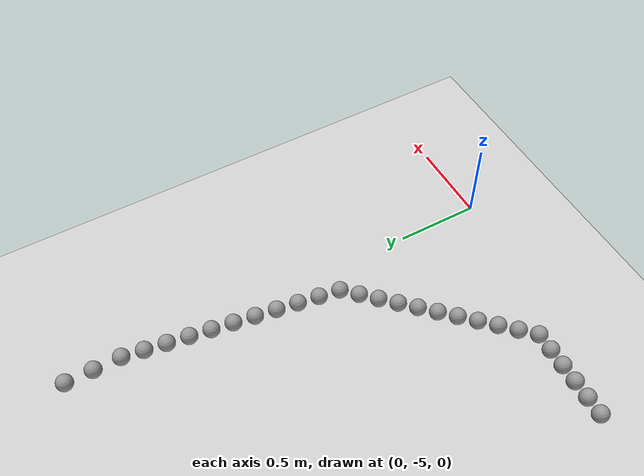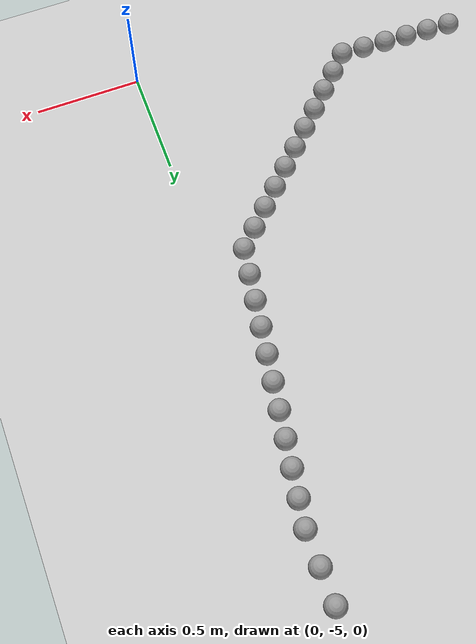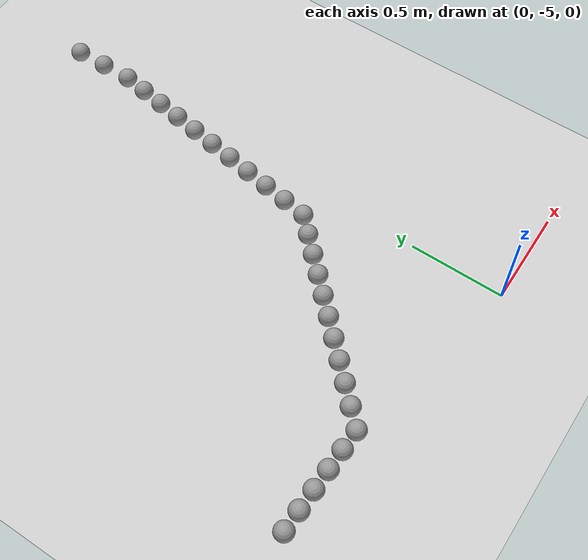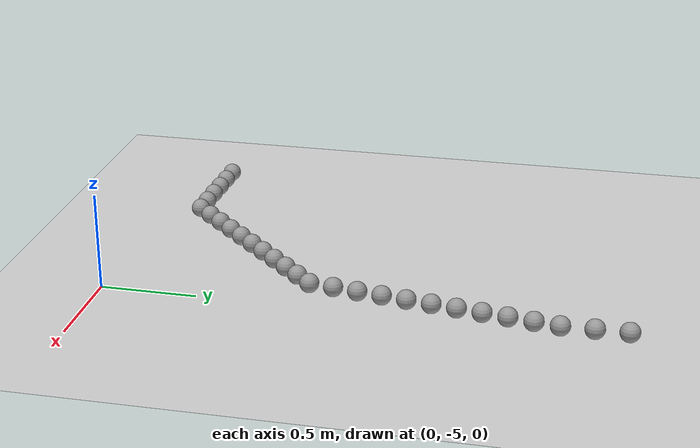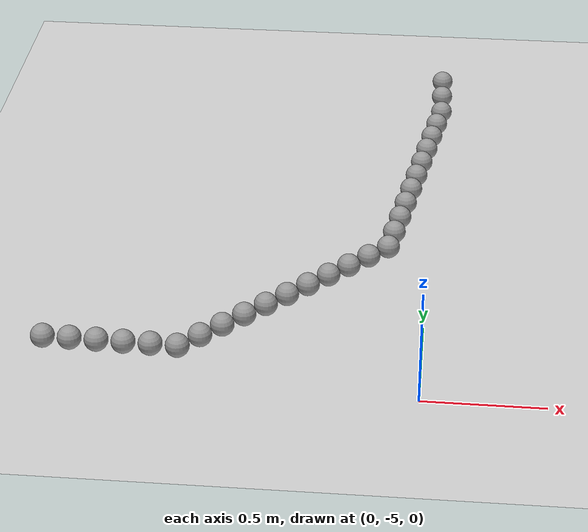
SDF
<sdf version="1.6">
 <world name="default">
  <model name="ground_plane">
   <static>1</static>
   <link name="link">
    <collision name="collision">
     <geometry><plane><normal>0 0 1</normal><size>100 100</size></plane></geometry>
     <surface><friction><ode><mu>100</mu><mu2>50</mu2></ode></friction></surface>
    </collision>
    <visual name="visual">
     <cast_shadows>0</cast_shadows>
     <geometry><plane><normal>0 0 1</normal><size>100 100</size></plane></geometry>
     <material>
      <script><uri>file://media/materials/scripts/gazebo.material</uri><name>Gazebo/Grey</name></script>
     </material>
    </visual>
   </link>
  </model>
  <model name="unit_sphere_0_105">
   <pose>-1.535000 -4.760000 0.050000 0 -0 0</pose>
   <link name="link">
    <inertial>
     <mass>1</mass>
     <inertia><ixx>0.1</ixx><ixy>0</ixy><ixz>0</ixz><iyy>0.1</iyy><iyz>0</iyz><izz>0.1</izz></inertia>
    </inertial>
    <collision name="collision"><geometry><sphere><radius>0.050000</radius></sphere></geometry></collision>
    <visual name="visual">
     <geometry><sphere><radius>0.050000</radius></sphere></geometry>
     <material>
      <script><name>Gazebo/Grey</name><uri>file://media/materials/scripts/gazebo.material</uri></script>
     </material>
    </visual>
   </link>
  </model>
  <model name="unit_sphere_0_106">
   <pose>-1.424000 -4.764000 0.050000 0 -0 0</pose>
   <link name="link">
    <inertial>
     <mass>1</mass>
     <inertia><ixx>0.1</ixx><ixy>0</ixy><ixz>0</ixz><iyy>0.1</iyy><iyz>0</iyz><izz>0.1</izz></inertia>
    </inertial>
    <collision name="collision"><geometry><sphere><radius>0.050000</radius></sphere></geometry></collision>
    <visual name="visual">
     <geometry><sphere><radius>0.050000</radius></sphere></geometry>
     <material>
      <script><name>Gazebo/Grey</name><uri>file://media/materials/scripts/gazebo.material</uri></script>
     </material>
    </visual>
   </link>
  </model>
  <model name="unit_sphere_0_107">
   <pose>-1.313000 -4.768000 0.050000 0 -0 0</pose>
   <link name="link">
    <inertial>
     <mass>1</mass>
     <inertia><ixx>0.1</ixx><ixy>0</ixy><ixz>0</ixz><iyy>0.1</iyy><iyz>0</iyz><izz>0.1</izz></inertia>
    </inertial>
    <collision name="collision"><geometry><sphere><radius>0.050000</radius></sphere></geometry></collision>
    <visual name="visual">
     <geometry><sphere><radius>0.050000</radius></sphere></geometry>
     <material>
      <script><name>Gazebo/Grey</name><uri>file://media/materials/scripts/gazebo.material</uri></script>
     </material>
    </visual>
   </link>
  </model>
  <model name="unit_sphere_0_108">
   <pose>-1.202000 -4.772000 0.050000 0 -0 0</pose>
   <link name="link">
    <inertial>
     <mass>1</mass>
     <inertia><ixx>0.1</ixx><ixy>0</ixy><ixz>0</ixz><iyy>0.1</iyy><iyz>0</iyz><izz>0.1</izz></inertia>
    </inertial>
    <collision name="collision"><geometry><sphere><radius>0.050000</radius></sphere></geometry></collision>
    <visual name="visual">
     <geometry><sphere><radius>0.050000</radius></sphere></geometry>
     <material>
      <script><name>Gazebo/Grey</name><uri>file://media/materials/scripts/gazebo.material</uri></script>
     </material>
    </visual>
   </link>
  </model>
  <model name="unit_sphere_0_109">
   <pose>-1.091000 -4.776000 0.050000 0 -0 0</pose>
   <link name="link">
    <inertial>
     <mass>1</mass>
     <inertia><ixx>0.1</ixx><ixy>0</ixy><ixz>0</ixz><iyy>0.1</iyy><iyz>0</iyz><izz>0.1</izz></inertia>
    </inertial>
    <collision name="collision"><geometry><sphere><radius>0.050000</radius></sphere></geometry></collision>
    <visual name="visual">
     <geometry><sphere><radius>0.050000</radius></sphere></geometry>
     <material>
      <script><name>Gazebo/Grey</name><uri>file://media/materials/scripts/gazebo.material</uri></script>
     </material>
    </visual>
   </link>
  </model>
  <model name="unit_sphere_0_110">
   <pose>-0.980000 -4.780000 0.050000 0 -0 0</pose>
   <link name="link">
    <inertial>
     <mass>1</mass>
     <inertia><ixx>0.1</ixx><ixy>0</ixy><ixz>0</ixz><iyy>0.1</iyy><iyz>0</iyz><izz>0.1</izz></inertia>
    </inertial>
    <collision name="collision"><geometry><sphere><radius>0.050000</radius></sphere></geometry></collision>
    <visual name="visual">
     <geometry><sphere><radius>0.050000</radius></sphere></geometry>
     <material>
      <script><name>Gazebo/Grey</name><uri>file://media/materials/scripts/gazebo.material</uri></script>
     </material>
    </visual>
   </link>
  </model>
  <model name="unit_sphere_0_111">
   <pose>-0.899000 -4.698000 0.050000 0 -0 0</pose>
   <link name="link">
    <inertial>
     <mass>1</mass>
     <inertia><ixx>0.1</ixx><ixy>0</ixy><ixz>0</ixz><iyy>0.1</iyy><iyz>0</iyz><izz>0.1</izz></inertia>
    </inertial>
    <collision name="collision"><geometry><sphere><radius>0.050000</radius></sphere></geometry></collision>
    <visual name="visual">
     <geometry><sphere><radius>0.050000</radius></sphere></geometry>
     <material>
      <script><name>Gazebo/Grey</name><uri>file://media/materials/scripts/gazebo.material</uri></script>
     </material>
    </visual>
   </link>
  </model>
  <model name="unit_sphere_0_112">
   <pose>-0.818000 -4.616000 0.050000 0 -0 0</pose>
   <link name="link">
    <inertial>
     <mass>1</mass>
     <inertia><ixx>0.1</ixx><ixy>0</ixy><ixz>0</ixz><iyy>0.1</iyy><iyz>0</iyz><izz>0.1</izz></inertia>
    </inertial>
    <collision name="collision"><geometry><sphere><radius>0.050000</radius></sphere></geometry></collision>
    <visual name="visual">
     <geometry><sphere><radius>0.050000</radius></sphere></geometry>
     <material>
      <script><name>Gazebo/Grey</name><uri>file://media/materials/scripts/gazebo.material</uri></script>
     </material>
    </visual>
   </link>
  </model>
  <model name="unit_sphere_0_113">
   <pose>-0.737000 -4.534000 0.050000 0 -0 0</pose>
   <link name="link">
    <inertial>
     <mass>1</mass>
     <inertia><ixx>0.1</ixx><ixy>0</ixy><ixz>0</ixz><iyy>0.1</iyy><iyz>0</iyz><izz>0.1</izz></inertia>
    </inertial>
    <collision name="collision"><geometry><sphere><radius>0.050000</radius></sphere></geometry></collision>
    <visual name="visual">
     <geometry><sphere><radius>0.050000</radius></sphere></geometry>
     <material>
      <script><name>Gazebo/Grey</name><uri>file://media/materials/scripts/gazebo.material</uri></script>
     </material>
    </visual>
   </link>
  </model>
  <model name="unit_sphere_0_114">
   <pose>-0.656000 -4.452000 0.050000 0 -0 0</pose>
   <link name="link">
    <inertial>
     <mass>1</mass>
     <inertia><ixx>0.1</ixx><ixy>0</ixy><ixz>0</ixz><iyy>0.1</iyy><iyz>0</iyz><izz>0.1</izz></inertia>
    </inertial>
    <collision name="collision"><geometry><sphere><radius>0.050000</radius></sphere></geometry></collision>
    <visual name="visual">
     <geometry><sphere><radius>0.050000</radius></sphere></geometry>
     <material>
      <script><name>Gazebo/Grey</name><uri>file://media/materials/scripts/gazebo.material</uri></script>
     </material>
    </visual>
   </link>
  </model>
  <model name="unit_sphere_0_115">
   <pose>-0.575000 -4.370000 0.050000 0 -0 0</pose>
   <link name="link">
    <inertial>
     <mass>1</mass>
     <inertia><ixx>0.1</ixx><ixy>0</ixy><ixz>0</ixz><iyy>0.1</iyy><iyz>0</iyz><izz>0.1</izz></inertia>
    </inertial>
    <collision name="collision"><geometry><sphere><radius>0.050000</radius></sphere></geometry></collision>
    <visual name="visual">
     <geometry><sphere><radius>0.050000</radius></sphere></geometry>
     <material>
      <script><name>Gazebo/Grey</name><uri>file://media/materials/scripts/gazebo.material</uri></script>
     </material>
    </visual>
   </link>
  </model>
  <model name="unit_sphere_0_116">
   <pose>-0.494000 -4.288000 0.050000 0 -0 0</pose>
   <link name="link">
    <inertial>
     <mass>1</mass>
     <inertia><ixx>0.1</ixx><ixy>0</ixy><ixz>0</ixz><iyy>0.1</iyy><iyz>0</iyz><izz>0.1</izz></inertia>
    </inertial>
    <collision name="collision"><geometry><sphere><radius>0.050000</radius></sphere></geometry></collision>
    <visual name="visual">
     <geometry><sphere><radius>0.050000</radius></sphere></geometry>
     <material>
      <script><name>Gazebo/Grey</name><uri>file://media/materials/scripts/gazebo.material</uri></script>
     </material>
    </visual>
   </link>
  </model>
  <model name="unit_sphere_0_117">
   <pose>-0.413000 -4.206000 0.050000 0 -0 0</pose>
   <link name="link">
    <inertial>
     <mass>1</mass>
     <inertia><ixx>0.1</ixx><ixy>0</ixy><ixz>0</ixz><iyy>0.1</iyy><iyz>0</iyz><izz>0.1</izz></inertia>
    </inertial>
    <collision name="collision"><geometry><sphere><radius>0.050000</radius></sphere></geometry></collision>
    <visual name="visual">
     <geometry><sphere><radius>0.050000</radius></sphere></geometry>
     <material>
      <script><name>Gazebo/Grey</name><uri>file://media/materials/scripts/gazebo.material</uri></script>
     </material>
    </visual>
   </link>
  </model>
  <model name="unit_sphere_0_118">
   <pose>-0.332000 -4.124000 0.050000 0 -0 0</pose>
   <link name="link">
    <inertial>
     <mass>1</mass>
     <inertia><ixx>0.1</ixx><ixy>0</ixy><ixz>0</ixz><iyy>0.1</iyy><iyz>0</iyz><izz>0.1</izz></inertia>
    </inertial>
    <collision name="collision"><geometry><sphere><radius>0.050000</radius></sphere></geometry></collision>
    <visual name="visual">
     <geometry><sphere><radius>0.050000</radius></sphere></geometry>
     <material>
      <script><name>Gazebo/Grey</name><uri>file://media/materials/scripts/gazebo.material</uri></script>
     </material>
    </visual>
   </link>
  </model>
  <model name="unit_sphere_0_119">
   <pose>-0.251000 -4.042000 0.050000 0 -0 0</pose>
   <link name="link">
    <inertial>
     <mass>1</mass>
     <inertia><ixx>0.1</ixx><ixy>0</ixy><ixz>0</ixz><iyy>0.1</iyy><iyz>0</iyz><izz>0.1</izz></inertia>
    </inertial>
    <collision name="collision"><geometry><sphere><radius>0.050000</radius></sphere></geometry></collision>
    <visual name="visual">
     <geometry><sphere><radius>0.050000</radius></sphere></geometry>
     <material>
      <script><name>Gazebo/Grey</name><uri>file://media/materials/scripts/gazebo.material</uri></script>
     </material>
    </visual>
   </link>
  </model>
  <model name="unit_sphere_0_120">
   <pose>-0.170000 -3.960000 0.050000 0 -0 0</pose>
   <link name="link">
    <inertial>
     <mass>1</mass>
     <inertia><ixx>0.1</ixx><ixy>0</ixy><ixz>0</ixz><iyy>0.1</iyy><iyz>0</iyz><izz>0.1</izz></inertia>
    </inertial>
    <collision name="collision"><geometry><sphere><radius>0.050000</radius></sphere></geometry></collision>
    <visual name="visual">
     <geometry><sphere><radius>0.050000</radius></sphere></geometry>
     <material>
      <script><name>Gazebo/Grey</name><uri>file://media/materials/scripts/gazebo.material</uri></script>
     </material>
    </visual>
   </link>
  </model>
  <model name="unit_sphere_0_121">
   <pose>-0.150000 -3.833000 0.050000 0 -0 0</pose>
   <link name="link">
    <inertial>
     <mass>1</mass>
     <inertia><ixx>0.1</ixx><ixy>0</ixy><ixz>0</ixz><iyy>0.1</iyy><iyz>0</iyz><izz>0.1</izz></inertia>
    </inertial>
    <collision name="collision"><geometry><sphere><radius>0.050000</radius></sphere></geometry></collision>
    <visual name="visual">
     <geometry><sphere><radius>0.050000</radius></sphere></geometry>
     <material>
      <script><name>Gazebo/Grey</name><uri>file://media/materials/scripts/gazebo.material</uri></script>
     </material>
    </visual>
   </link>
  </model>
  <model name="unit_sphere_0_122">
   <pose>-0.130000 -3.706000 0.050000 0 -0 0</pose>
   <link name="link">
    <inertial>
     <mass>1</mass>
     <inertia><ixx>0.1</ixx><ixy>0</ixy><ixz>0</ixz><iyy>0.1</iyy><iyz>0</iyz><izz>0.1</izz></inertia>
    </inertial>
    <collision name="collision"><geometry><sphere><radius>0.050000</radius></sphere></geometry></collision>
    <visual name="visual">
     <geometry><sphere><radius>0.050000</radius></sphere></geometry>
     <material>
      <script><name>Gazebo/Grey</name><uri>file://media/materials/scripts/gazebo.material</uri></script>
     </material>
    </visual>
   </link>
  </model>
  <model name="unit_sphere_0_123">
   <pose>-0.110000 -3.579000 0.050000 0 -0 0</pose>
   <link name="link">
    <inertial>
     <mass>1</mass>
     <inertia><ixx>0.1</ixx><ixy>0</ixy><ixz>0</ixz><iyy>0.1</iyy><iyz>0</iyz><izz>0.1</izz></inertia>
    </inertial>
    <collision name="collision"><geometry><sphere><radius>0.050000</radius></sphere></geometry></collision>
    <visual name="visual">
     <geometry><sphere><radius>0.050000</radius></sphere></geometry>
     <material>
      <script><name>Gazebo/Grey</name><uri>file://media/materials/scripts/gazebo.material</uri></script>
     </material>
    </visual>
   </link>
  </model>
  <model name="unit_sphere_0_124">
   <pose>-0.090000 -3.452000 0.050000 0 -0 0</pose>
   <link name="link">
    <inertial>
     <mass>1</mass>
     <inertia><ixx>0.1</ixx><ixy>0</ixy><ixz>0</ixz><iyy>0.1</iyy><iyz>0</iyz><izz>0.1</izz></inertia>
    </inertial>
    <collision name="collision"><geometry><sphere><radius>0.050000</radius></sphere></geometry></collision>
    <visual name="visual">
     <geometry><sphere><radius>0.050000</radius></sphere></geometry>
     <material>
      <script><name>Gazebo/Grey</name><uri>file://media/materials/scripts/gazebo.material</uri></script>
     </material>
    </visual>
   </link>
  </model>
  <model name="unit_sphere_0_125">
   <pose>-0.070000 -3.325000 0.050000 0 -0 0</pose>
   <link name="link">
    <inertial>
     <mass>1</mass>
     <inertia><ixx>0.1</ixx><ixy>0</ixy><ixz>0</ixz><iyy>0.1</iyy><iyz>0</iyz><izz>0.1</izz></inertia>
    </inertial>
    <collision name="collision"><geometry><sphere><radius>0.050000</radius></sphere></geometry></collision>
    <visual name="visual">
     <geometry><sphere><radius>0.050000</radius></sphere></geometry>
     <material>
      <script><name>Gazebo/Grey</name><uri>file://media/materials/scripts/gazebo.material</uri></script>
     </material>
    </visual>
   </link>
  </model>
  <model name="unit_sphere_0_126">
   <pose>-0.050000 -3.198000 0.050000 0 -0 0</pose>
   <link name="link">
    <inertial>
     <mass>1</mass>
     <inertia><ixx>0.1</ixx><ixy>0</ixy><ixz>0</ixz><iyy>0.1</iyy><iyz>0</iyz><izz>0.1</izz></inertia>
    </inertial>
    <collision name="collision"><geometry><sphere><radius>0.050000</radius></sphere></geometry></collision>
    <visual name="visual">
     <geometry><sphere><radius>0.050000</radius></sphere></geometry>
     <material>
      <script><name>Gazebo/Grey</name><uri>file://media/materials/scripts/gazebo.material</uri></script>
     </material>
    </visual>
   </link>
  </model>
  <model name="unit_sphere_0_127">
   <pose>-0.030000 -3.071000 0.050000 0 -0 0</pose>
   <link name="link">
    <inertial>
     <mass>1</mass>
     <inertia><ixx>0.1</ixx><ixy>0</ixy><ixz>0</ixz><iyy>0.1</iyy><iyz>0</iyz><izz>0.1</izz></inertia>
    </inertial>
    <collision name="collision"><geometry><sphere><radius>0.050000</radius></sphere></geometry></collision>
    <visual name="visual">
     <geometry><sphere><radius>0.050000</radius></sphere></geometry>
     <material>
      <script><name>Gazebo/Grey</name><uri>file://media/materials/scripts/gazebo.material</uri></script>
     </material>
    </visual>
   </link>
  </model>
  <model name="unit_sphere_0_128">
   <pose>-0.010000 -2.944000 0.050000 0 -0 0</pose>
   <link name="link">
    <inertial>
     <mass>1</mass>
     <inertia><ixx>0.1</ixx><ixy>0</ixy><ixz>0</ixz><iyy>0.1</iyy><iyz>0</iyz><izz>0.1</izz></inertia>
    </inertial>
    <collision name="collision"><geometry><sphere><radius>0.050000</radius></sphere></geometry></collision>
    <visual name="visual">
     <geometry><sphere><radius>0.050000</radius></sphere></geometry>
     <material>
      <script><name>Gazebo/Grey</name><uri>file://media/materials/scripts/gazebo.material</uri></script>
     </material>
    </visual>
   </link>
  </model>
  <model name="unit_sphere_0_129">
   <pose>0.010000 -2.817000 0.050000 0 -0 0</pose>
   <link name="link">
    <inertial>
     <mass>1</mass>
     <inertia><ixx>0.1</ixx><ixy>0</ixy><ixz>0</ixz><iyy>0.1</iyy><iyz>0</iyz><izz>0.1</izz></inertia>
    </inertial>
    <collision name="collision"><geometry><sphere><radius>0.050000</radius></sphere></geometry></collision>
    <visual name="visual">
     <geometry><sphere><radius>0.050000</radius></sphere></geometry>
     <material>
      <script><name>Gazebo/Grey</name><uri>file://media/materials/scripts/gazebo.material</uri></script>
     </material>
    </visual>
   </link>
  </model>
  <model name="unit_sphere_0_130">
   <pose>0.030000 -2.690000 0.050000 0 -0 0</pose>
   <link name="link">
    <inertial>
     <mass>1</mass>
     <inertia><ixx>0.1</ixx><ixy>0</ixy><ixz>0</ixz><iyy>0.1</iyy><iyz>0</iyz><izz>0.1</izz></inertia>
    </inertial>
    <collision name="collision"><geometry><sphere><radius>0.050000</radius></sphere></geometry></collision>
    <visual name="visual">
     <geometry><sphere><radius>0.050000</radius></sphere></geometry>
     <material>
      <script><name>Gazebo/Grey</name><uri>file://media/materials/scripts/gazebo.material</uri></script>
     </material>
    </visual>
   </link>
  </model>
  <model name="unit_sphere_0_131">
   <pose>0.029000 -2.527000 0.050000 0 -0 0</pose>
   <link name="link">
    <inertial>
     <mass>1</mass>
     <inertia><ixx>0.1</ixx><ixy>0</ixy><ixz>0</ixz><iyy>0.1</iyy><iyz>0</iyz><izz>0.1</izz></inertia>
    </inertial>
    <collision name="collision"><geometry><sphere><radius>0.050000</radius></sphere></geometry></collision>
    <visual name="visual">
     <geometry><sphere><radius>0.050000</radius></sphere></geometry>
     <material>
      <script><name>Gazebo/Grey</name><uri>file://media/materials/scripts/gazebo.material</uri></script>
     </material>
    </visual>
   </link>
  </model>
  <model name="unit_sphere_0_132">
   <pose>0.028000 -2.364000 0.050000 0 -0 0</pose>
   <link name="link">
    <inertial>
     <mass>1</mass>
     <inertia><ixx>0.1</ixx><ixy>0</ixy><ixz>0</ixz><iyy>0.1</iyy><iyz>0</iyz><izz>0.1</izz></inertia>
    </inertial>
    <collision name="collision"><geometry><sphere><radius>0.050000</radius></sphere></geometry></collision>
    <visual name="visual">
     <geometry><sphere><radius>0.050000</radius></sphere></geometry>
     <material>
      <script><name>Gazebo/Grey</name><uri>file://media/materials/scripts/gazebo.material</uri></script>
     </material>
    </visual>
   </link>
  </model>
 </world>
</sdf>
